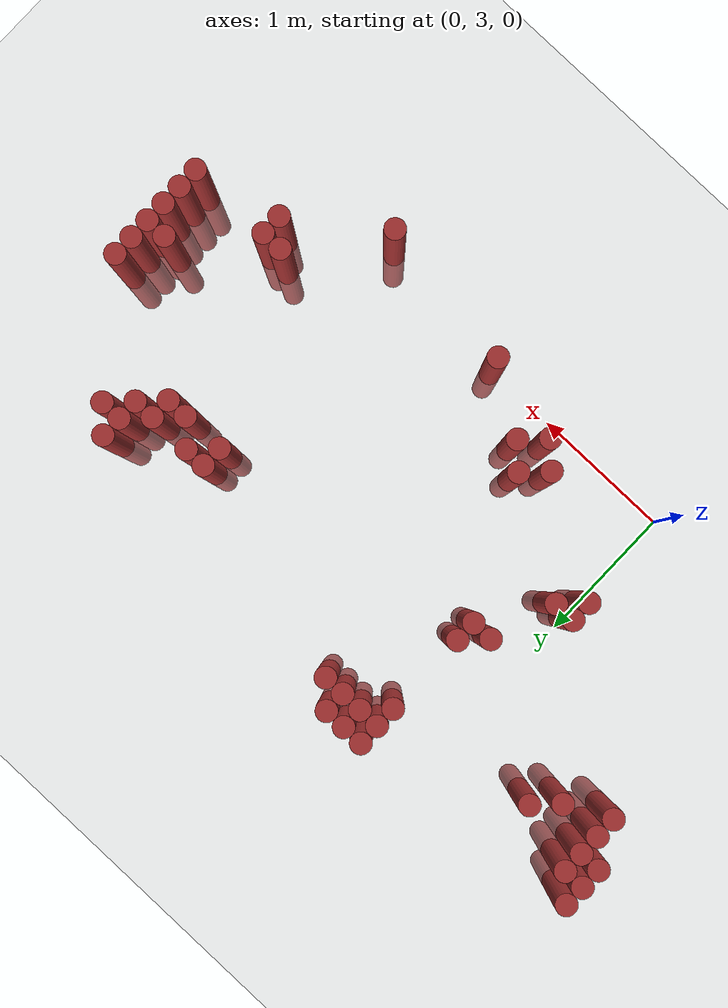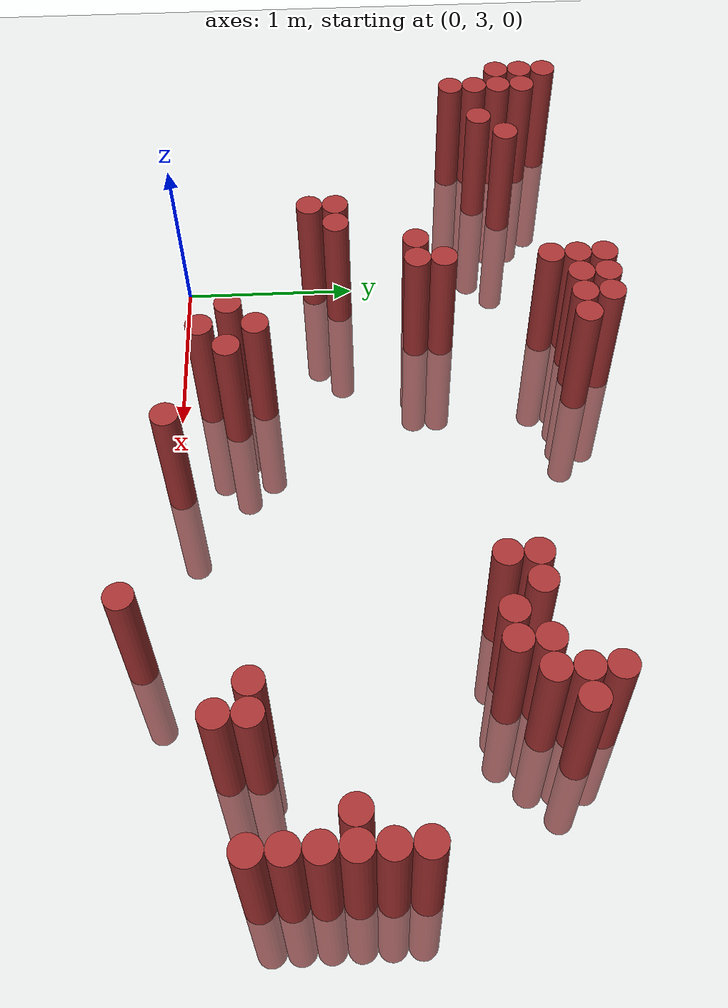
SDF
<sdf version="1.6">
 <world name="default">
  <model name="ground_plane">
   <static>1</static>
   <link name="link">
    <collision name="collision">
     <geometry><plane><normal>0 0 1</normal><size>100 100</size></plane></geometry>
     <surface><friction><ode><mu>100</mu><mu2>50</mu2></ode></friction></surface>
    </collision>
    <visual name="visual">
     <cast_shadows>0</cast_shadows>
     <geometry><plane><normal>0 0 1</normal><size>100 100</size></plane></geometry>
     <material>
      <script><uri>file://media/materials/scripts/gazebo.material</uri><name>Gazebo/Grey</name></script>
     </material>
    </visual>
   </link>
  </model>
  <model name="unit_cylinder_322">
   <static>1</static>
   <pose>-1.175000 4.975000 0.000000 0.000000 0.000000 0.000000</pose>
   <link name="link">
    <inertial>
     <mass>1</mass>
     <inertia><ixx>0.145833</ixx><ixy>0</ixy><ixz>0</ixz><iyy>0.145833</iyy><iyz>0</iyz><izz>0.125</izz></inertia>
    </inertial>
    <collision name="collision">
     <geometry><cylinder><radius>0.075000</radius><length>1.5</length></cylinder></geometry>
    </collision>
    <visual name="visual">
     <geometry><cylinder><radius>0.075000</radius><length>1.5</length></cylinder></geometry>
     <material>
      <ambient>0.648000 0.192000 0.192000 1</ambient>
      <diffuse>0.648000 0.192000 0.192000 1</diffuse>
     </material>
     <material>
      <script><name>Gazebo/Grey</name><uri>file://media/materials/scripts/gazebo.material</uri></script>
     </material>
    </visual>
   </link>
  </model>
  <model name="unit_cylinder_323">
   <static>1</static>
   <pose>-1.175000 5.125000 0.000000 0.000000 0.000000 0.000000</pose>
   <link name="link">
    <inertial>
     <mass>1</mass>
     <inertia><ixx>0.145833</ixx><ixy>0</ixy><ixz>0</ixz><iyy>0.145833</iyy><iyz>0</iyz><izz>0.125</izz></inertia>
    </inertial>
    <collision name="collision">
     <geometry><cylinder><radius>0.075000</radius><length>1.5</length></cylinder></geometry>
    </collision>
    <visual name="visual">
     <geometry><cylinder><radius>0.075000</radius><length>1.5</length></cylinder></geometry>
     <material>
      <ambient>0.648000 0.192000 0.192000 1</ambient>
      <diffuse>0.648000 0.192000 0.192000 1</diffuse>
     </material>
     <material>
      <script><name>Gazebo/Grey</name><uri>file://media/materials/scripts/gazebo.material</uri></script>
     </material>
    </visual>
   </link>
  </model>
  <model name="unit_cylinder_324">
   <static>1</static>
   <pose>-1.175000 5.275000 0.000000 0.000000 0.000000 0.000000</pose>
   <link name="link">
    <inertial>
     <mass>1</mass>
     <inertia><ixx>0.145833</ixx><ixy>0</ixy><ixz>0</ixz><iyy>0.145833</iyy><iyz>0</iyz><izz>0.125</izz></inertia>
    </inertial>
    <collision name="collision">
     <geometry><cylinder><radius>0.075000</radius><length>1.5</length></cylinder></geometry>
    </collision>
    <visual name="visual">
     <geometry><cylinder><radius>0.075000</radius><length>1.5</length></cylinder></geometry>
     <material>
      <ambient>0.648000 0.192000 0.192000 1</ambient>
      <diffuse>0.648000 0.192000 0.192000 1</diffuse>
     </material>
     <material>
      <script><name>Gazebo/Grey</name><uri>file://media/materials/scripts/gazebo.material</uri></script>
     </material>
    </visual>
   </link>
  </model>
  <model name="unit_cylinder_325">
   <static>1</static>
   <pose>-1.025000 4.675000 0.000000 0.000000 0.000000 0.000000</pose>
   <link name="link">
    <inertial>
     <mass>1</mass>
     <inertia><ixx>0.145833</ixx><ixy>0</ixy><ixz>0</ixz><iyy>0.145833</iyy><iyz>0</iyz><izz>0.125</izz></inertia>
    </inertial>
    <collision name="collision">
     <geometry><cylinder><radius>0.075000</radius><length>1.5</length></cylinder></geometry>
    </collision>
    <visual name="visual">
     <geometry><cylinder><radius>0.075000</radius><length>1.5</length></cylinder></geometry>
     <material>
      <ambient>0.648000 0.192000 0.192000 1</ambient>
      <diffuse>0.648000 0.192000 0.192000 1</diffuse>
     </material>
     <material>
      <script><name>Gazebo/Grey</name><uri>file://media/materials/scripts/gazebo.material</uri></script>
     </material>
    </visual>
   </link>
  </model>
  <model name="unit_cylinder_326">
   <static>1</static>
   <pose>-1.025000 4.825000 0.000000 0.000000 0.000000 0.000000</pose>
   <link name="link">
    <inertial>
     <mass>1</mass>
     <inertia><ixx>0.145833</ixx><ixy>0</ixy><ixz>0</ixz><iyy>0.145833</iyy><iyz>0</iyz><izz>0.125</izz></inertia>
    </inertial>
    <collision name="collision">
     <geometry><cylinder><radius>0.075000</radius><length>1.5</length></cylinder></geometry>
    </collision>
    <visual name="visual">
     <geometry><cylinder><radius>0.075000</radius><length>1.5</length></cylinder></geometry>
     <material>
      <ambient>0.648000 0.192000 0.192000 1</ambient>
      <diffuse>0.648000 0.192000 0.192000 1</diffuse>
     </material>
     <material>
      <script><name>Gazebo/Grey</name><uri>file://media/materials/scripts/gazebo.material</uri></script>
     </material>
    </visual>
   </link>
  </model>
  <model name="unit_cylinder_327">
   <static>1</static>
   <pose>-1.025000 4.975000 0.000000 0.000000 0.000000 0.000000</pose>
   <link name="link">
    <inertial>
     <mass>1</mass>
     <inertia><ixx>0.145833</ixx><ixy>0</ixy><ixz>0</ixz><iyy>0.145833</iyy><iyz>0</iyz><izz>0.125</izz></inertia>
    </inertial>
    <collision name="collision">
     <geometry><cylinder><radius>0.075000</radius><length>1.5</length></cylinder></geometry>
    </collision>
    <visual name="visual">
     <geometry><cylinder><radius>0.075000</radius><length>1.5</length></cylinder></geometry>
     <material>
      <ambient>0.648000 0.192000 0.192000 1</ambient>
      <diffuse>0.648000 0.192000 0.192000 1</diffuse>
     </material>
     <material>
      <script><name>Gazebo/Grey</name><uri>file://media/materials/scripts/gazebo.material</uri></script>
     </material>
    </visual>
   </link>
  </model>
  <model name="unit_cylinder_328">
   <static>1</static>
   <pose>-1.025000 5.125000 0.000000 0.000000 0.000000 0.000000</pose>
   <link name="link">
    <inertial>
     <mass>1</mass>
     <inertia><ixx>0.145833</ixx><ixy>0</ixy><ixz>0</ixz><iyy>0.145833</iyy><iyz>0</iyz><izz>0.125</izz></inertia>
    </inertial>
    <collision name="collision">
     <geometry><cylinder><radius>0.075000</radius><length>1.5</length></cylinder></geometry>
    </collision>
    <visual name="visual">
     <geometry><cylinder><radius>0.075000</radius><length>1.5</length></cylinder></geometry>
     <material>
      <ambient>0.648000 0.192000 0.192000 1</ambient>
      <diffuse>0.648000 0.192000 0.192000 1</diffuse>
     </material>
     <material>
      <script><name>Gazebo/Grey</name><uri>file://media/materials/scripts/gazebo.material</uri></script>
     </material>
    </visual>
   </link>
  </model>
  <model name="unit_cylinder_329">
   <static>1</static>
   <pose>-0.725000 4.825000 0.000000 0.000000 0.000000 0.000000</pose>
   <link name="link">
    <inertial>
     <mass>1</mass>
     <inertia><ixx>0.145833</ixx><ixy>0</ixy><ixz>0</ixz><iyy>0.145833</iyy><iyz>0</iyz><izz>0.125</izz></inertia>
    </inertial>
    <collision name="collision">
     <geometry><cylinder><radius>0.075000</radius><length>1.5</length></cylinder></geometry>
    </collision>
    <visual name="visual">
     <geometry><cylinder><radius>0.075000</radius><length>1.5</length></cylinder></geometry>
     <material>
      <ambient>0.648000 0.192000 0.192000 1</ambient>
      <diffuse>0.648000 0.192000 0.192000 1</diffuse>
     </material>
     <material>
      <script><name>Gazebo/Grey</name><uri>file://media/materials/scripts/gazebo.material</uri></script>
     </material>
    </visual>
   </link>
  </model>
  <model name="unit_cylinder_330">
   <static>1</static>
   <pose>-0.575000 4.975000 0.000000 0.000000 0.000000 0.000000</pose>
   <link name="link">
    <inertial>
     <mass>1</mass>
     <inertia><ixx>0.145833</ixx><ixy>0</ixy><ixz>0</ixz><iyy>0.145833</iyy><iyz>0</iyz><izz>0.125</izz></inertia>
    </inertial>
    <collision name="collision">
     <geometry><cylinder><radius>0.075000</radius><length>1.5</length></cylinder></geometry>
    </collision>
    <visual name="visual">
     <geometry><cylinder><radius>0.075000</radius><length>1.5</length></cylinder></geometry>
     <material>
      <ambient>0.648000 0.192000 0.192000 1</ambient>
      <diffuse>0.648000 0.192000 0.192000 1</diffuse>
     </material>
     <material>
      <script><name>Gazebo/Grey</name><uri>file://media/materials/scripts/gazebo.material</uri></script>
     </material>
    </visual>
   </link>
  </model>
  <model name="unit_cylinder_331">
   <static>1</static>
   <pose>0.025000 3.775000 0.000000 0.000000 0.000000 0.000000</pose>
   <link name="link">
    <inertial>
     <mass>1</mass>
     <inertia><ixx>0.145833</ixx><ixy>0</ixy><ixz>0</ixz><iyy>0.145833</iyy><iyz>0</iyz><izz>0.125</izz></inertia>
    </inertial>
    <collision name="collision">
     <geometry><cylinder><radius>0.075000</radius><length>1.5</length></cylinder></geometry>
    </collision>
    <visual name="visual">
     <geometry><cylinder><radius>0.075000</radius><length>1.5</length></cylinder></geometry>
     <material>
      <ambient>0.648000 0.192000 0.192000 1</ambient>
      <diffuse>0.648000 0.192000 0.192000 1</diffuse>
     </material>
     <material>
      <script><name>Gazebo/Grey</name><uri>file://media/materials/scripts/gazebo.material</uri></script>
     </material>
    </visual>
   </link>
  </model>
  <model name="unit_cylinder_332">
   <static>1</static>
   <pose>0.025000 3.925000 0.000000 0.000000 0.000000 0.000000</pose>
   <link name="link">
    <inertial>
     <mass>1</mass>
     <inertia><ixx>0.145833</ixx><ixy>0</ixy><ixz>0</ixz><iyy>0.145833</iyy><iyz>0</iyz><izz>0.125</izz></inertia>
    </inertial>
    <collision name="collision">
     <geometry><cylinder><radius>0.075000</radius><length>1.5</length></cylinder></geometry>
    </collision>
    <visual name="visual">
     <geometry><cylinder><radius>0.075000</radius><length>1.5</length></cylinder></geometry>
     <material>
      <ambient>0.648000 0.192000 0.192000 1</ambient>
      <diffuse>0.648000 0.192000 0.192000 1</diffuse>
     </material>
     <material>
      <script><name>Gazebo/Grey</name><uri>file://media/materials/scripts/gazebo.material</uri></script>
     </material>
    </visual>
   </link>
  </model>
  <model name="unit_cylinder_335">
   <static>1</static>
   <pose>0.175000 3.925000 0.000000 0.000000 0.000000 0.000000</pose>
   <link name="link">
    <inertial>
     <mass>1</mass>
     <inertia><ixx>0.145833</ixx><ixy>0</ixy><ixz>0</ixz><iyy>0.145833</iyy><iyz>0</iyz><izz>0.125</izz></inertia>
    </inertial>
    <collision name="collision">
     <geometry><cylinder><radius>0.075000</radius><length>1.5</length></cylinder></geometry>
    </collision>
    <visual name="visual">
     <geometry><cylinder><radius>0.075000</radius><length>1.5</length></cylinder></geometry>
     <material>
      <ambient>0.648000 0.192000 0.192000 1</ambient>
      <diffuse>0.648000 0.192000 0.192000 1</diffuse>
     </material>
     <material>
      <script><name>Gazebo/Grey</name><uri>file://media/materials/scripts/gazebo.material</uri></script>
     </material>
    </visual>
   </link>
  </model>
  <model name="unit_cylinder_339">
   <static>1</static>
   <pose>0.325000 4.375000 0.000000 0.000000 0.000000 0.000000</pose>
   <link name="link">
    <inertial>
     <mass>1</mass>
     <inertia><ixx>0.145833</ixx><ixy>0</ixy><ixz>0</ixz><iyy>0.145833</iyy><iyz>0</iyz><izz>0.125</izz></inertia>
    </inertial>
    <collision name="collision">
     <geometry><cylinder><radius>0.075000</radius><length>1.5</length></cylinder></geometry>
    </collision>
    <visual name="visual">
     <geometry><cylinder><radius>0.075000</radius><length>1.5</length></cylinder></geometry>
     <material>
      <ambient>0.648000 0.192000 0.192000 1</ambient>
      <diffuse>0.648000 0.192000 0.192000 1</diffuse>
     </material>
     <material>
      <script><name>Gazebo/Grey</name><uri>file://media/materials/scripts/gazebo.material</uri></script>
     </material>
    </visual>
   </link>
  </model>
  <model name="unit_cylinder_343">
   <static>1</static>
   <pose>0.475000 4.375000 0.000000 0.000000 0.000000 0.000000</pose>
   <link name="link">
    <inertial>
     <mass>1</mass>
     <inertia><ixx>0.145833</ixx><ixy>0</ixy><ixz>0</ixz><iyy>0.145833</iyy><iyz>0</iyz><izz>0.125</izz></inertia>
    </inertial>
    <collision name="collision">
     <geometry><cylinder><radius>0.075000</radius><length>1.5</length></cylinder></geometry>
    </collision>
    <visual name="visual">
     <geometry><cylinder><radius>0.075000</radius><length>1.5</length></cylinder></geometry>
     <material>
      <ambient>0.648000 0.192000 0.192000 1</ambient>
      <diffuse>0.648000 0.192000 0.192000 1</diffuse>
     </material>
     <material>
      <script><name>Gazebo/Grey</name><uri>file://media/materials/scripts/gazebo.material</uri></script>
     </material>
    </visual>
   </link>
  </model>
  <model name="unit_cylinder_344">
   <static>1</static>
   <pose>0.475000 4.525000 0.000000 0.000000 0.000000 0.000000</pose>
   <link name="link">
    <inertial>
     <mass>1</mass>
     <inertia><ixx>0.145833</ixx><ixy>0</ixy><ixz>0</ixz><iyy>0.145833</iyy><iyz>0</iyz><izz>0.125</izz></inertia>
    </inertial>
    <collision name="collision">
     <geometry><cylinder><radius>0.075000</radius><length>1.5</length></cylinder></geometry>
    </collision>
    <visual name="visual">
     <geometry><cylinder><radius>0.075000</radius><length>1.5</length></cylinder></geometry>
     <material>
      <ambient>0.648000 0.192000 0.192000 1</ambient>
      <diffuse>0.648000 0.192000 0.192000 1</diffuse>
     </material>
     <material>
      <script><name>Gazebo/Grey</name><uri>file://media/materials/scripts/gazebo.material</uri></script>
     </material>
    </visual>
   </link>
  </model>
  <model name="unit_cylinder_345">
   <static>1</static>
   <pose>0.475000 5.125000 0.000000 0.000000 0.000000 0.000000</pose>
   <link name="link">
    <inertial>
     <mass>1</mass>
     <inertia><ixx>0.145833</ixx><ixy>0</ixy><ixz>0</ixz><iyy>0.145833</iyy><iyz>0</iyz><izz>0.125</izz></inertia>
    </inertial>
    <collision name="collision">
     <geometry><cylinder><radius>0.075000</radius><length>1.5</length></cylinder></geometry>
    </collision>
    <visual name="visual">
     <geometry><cylinder><radius>0.075000</radius><length>1.5</length></cylinder></geometry>
     <material>
      <ambient>0.648000 0.192000 0.192000 1</ambient>
      <diffuse>0.648000 0.192000 0.192000 1</diffuse>
     </material>
     <material>
      <script><name>Gazebo/Grey</name><uri>file://media/materials/scripts/gazebo.material</uri></script>
     </material>
    </visual>
   </link>
  </model>
  <model name="unit_cylinder_346">
   <static>1</static>
   <pose>0.475000 5.275000 0.000000 0.000000 0.000000 0.000000</pose>
   <link name="link">
    <inertial>
     <mass>1</mass>
     <inertia><ixx>0.145833</ixx><ixy>0</ixy><ixz>0</ixz><iyy>0.145833</iyy><iyz>0</iyz><izz>0.125</izz></inertia>
    </inertial>
    <collision name="collision">
     <geometry><cylinder><radius>0.075000</radius><length>1.5</length></cylinder></geometry>
    </collision>
    <visual name="visual">
     <geometry><cylinder><radius>0.075000</radius><length>1.5</length></cylinder></geometry>
     <material>
      <ambient>0.648000 0.192000 0.192000 1</ambient>
      <diffuse>0.648000 0.192000 0.192000 1</diffuse>
     </material>
     <material>
      <script><name>Gazebo/Grey</name><uri>file://media/materials/scripts/gazebo.material</uri></script>
     </material>
    </visual>
   </link>
  </model>
  <model name="unit_cylinder_347">
   <static>1</static>
   <pose>0.475000 5.425000 0.000000 0.000000 0.000000 0.000000</pose>
   <link name="link">
    <inertial>
     <mass>1</mass>
     <inertia><ixx>0.145833</ixx><ixy>0</ixy><ixz>0</ixz><iyy>0.145833</iyy><iyz>0</iyz><izz>0.125</izz></inertia>
    </inertial>
    <collision name="collision">
     <geometry><cylinder><radius>0.075000</radius><length>1.5</length></cylinder></geometry>
    </collision>
    <visual name="visual">
     <geometry><cylinder><radius>0.075000</radius><length>1.5</length></cylinder></geometry>
     <material>
      <ambient>0.648000 0.192000 0.192000 1</ambient>
      <diffuse>0.648000 0.192000 0.192000 1</diffuse>
     </material>
     <material>
      <script><name>Gazebo/Grey</name><uri>file://media/materials/scripts/gazebo.material</uri></script>
     </material>
    </visual>
   </link>
  </model>
  <model name="unit_cylinder_350">
   <static>1</static>
   <pose>0.625000 5.275000 0.000000 0.000000 0.000000 0.000000</pose>
   <link name="link">
    <inertial>
     <mass>1</mass>
     <inertia><ixx>0.145833</ixx><ixy>0</ixy><ixz>0</ixz><iyy>0.145833</iyy><iyz>0</iyz><izz>0.125</izz></inertia>
    </inertial>
    <collision name="collision">
     <geometry><cylinder><radius>0.075000</radius><length>1.5</length></cylinder></geometry>
    </collision>
    <visual name="visual">
     <geometry><cylinder><radius>0.075000</radius><length>1.5</length></cylinder></geometry>
     <material>
      <ambient>0.648000 0.192000 0.192000 1</ambient>
      <diffuse>0.648000 0.192000 0.192000 1</diffuse>
     </material>
     <material>
      <script><name>Gazebo/Grey</name><uri>file://media/materials/scripts/gazebo.material</uri></script>
     </material>
    </visual>
   </link>
  </model>
  <model name="unit_cylinder_351">
   <static>1</static>
   <pose>0.625000 5.425000 0.000000 0.000000 0.000000 0.000000</pose>
   <link name="link">
    <inertial>
     <mass>1</mass>
     <inertia><ixx>0.145833</ixx><ixy>0</ixy><ixz>0</ixz><iyy>0.145833</iyy><iyz>0</iyz><izz>0.125</izz></inertia>
    </inertial>
    <collision name="collision">
     <geometry><cylinder><radius>0.075000</radius><length>1.5</length></cylinder></geometry>
    </collision>
    <visual name="visual">
     <geometry><cylinder><radius>0.075000</radius><length>1.5</length></cylinder></geometry>
     <material>
      <ambient>0.648000 0.192000 0.192000 1</ambient>
      <diffuse>0.648000 0.192000 0.192000 1</diffuse>
     </material>
     <material>
      <script><name>Gazebo/Grey</name><uri>file://media/materials/scripts/gazebo.material</uri></script>
     </material>
    </visual>
   </link>
  </model>
  <model name="unit_cylinder_352">
   <static>1</static>
   <pose>0.775000 3.325000 0.000000 0.000000 0.000000 0.000000</pose>
   <link name="link">
    <inertial>
     <mass>1</mass>
     <inertia><ixx>0.145833</ixx><ixy>0</ixy><ixz>0</ixz><iyy>0.145833</iyy><iyz>0</iyz><izz>0.125</izz></inertia>
    </inertial>
    <collision name="collision">
     <geometry><cylinder><radius>0.075000</radius><length>1.5</length></cylinder></geometry>
    </collision>
    <visual name="visual">
     <geometry><cylinder><radius>0.075000</radius><length>1.5</length></cylinder></geometry>
     <material>
      <ambient>0.648000 0.192000 0.192000 1</ambient>
      <diffuse>0.648000 0.192000 0.192000 1</diffuse>
     </material>
     <material>
      <script><name>Gazebo/Grey</name><uri>file://media/materials/scripts/gazebo.material</uri></script>
     </material>
    </visual>
   </link>
  </model>
  <model name="unit_cylinder_353">
   <static>1</static>
   <pose>0.775000 5.275000 0.000000 0.000000 0.000000 0.000000</pose>
   <link name="link">
    <inertial>
     <mass>1</mass>
     <inertia><ixx>0.145833</ixx><ixy>0</ixy><ixz>0</ixz><iyy>0.145833</iyy><iyz>0</iyz><izz>0.125</izz></inertia>
    </inertial>
    <collision name="collision">
     <geometry><cylinder><radius>0.075000</radius><length>1.5</length></cylinder></geometry>
    </collision>
    <visual name="visual">
     <geometry><cylinder><radius>0.075000</radius><length>1.5</length></cylinder></geometry>
     <material>
      <ambient>0.648000 0.192000 0.192000 1</ambient>
      <diffuse>0.648000 0.192000 0.192000 1</diffuse>
     </material>
     <material>
      <script><name>Gazebo/Grey</name><uri>file://media/materials/scripts/gazebo.material</uri></script>
     </material>
    </visual>
   </link>
  </model>
  <model name="unit_cylinder_354">
   <static>1</static>
   <pose>0.775000 5.425000 0.000000 0.000000 0.000000 0.000000</pose>
   <link name="link">
    <inertial>
     <mass>1</mass>
     <inertia><ixx>0.145833</ixx><ixy>0</ixy><ixz>0</ixz><iyy>0.145833</iyy><iyz>0</iyz><izz>0.125</izz></inertia>
    </inertial>
    <collision name="collision">
     <geometry><cylinder><radius>0.075000</radius><length>1.5</length></cylinder></geometry>
    </collision>
    <visual name="visual">
     <geometry><cylinder><radius>0.075000</radius><length>1.5</length></cylinder></geometry>
     <material>
      <ambient>0.648000 0.192000 0.192000 1</ambient>
      <diffuse>0.648000 0.192000 0.192000 1</diffuse>
     </material>
     <material>
      <script><name>Gazebo/Grey</name><uri>file://media/materials/scripts/gazebo.material</uri></script>
     </material>
    </visual>
   </link>
  </model>
  <model name="unit_cylinder_359">
   <static>1</static>
   <pose>0.925000 3.175000 0.000000 0.000000 0.000000 0.000000</pose>
   <link name="link">
    <inertial>
     <mass>1</mass>
     <inertia><ixx>0.145833</ixx><ixy>0</ixy><ixz>0</ixz><iyy>0.145833</iyy><iyz>0</iyz><izz>0.125</izz></inertia>
    </inertial>
    <collision name="collision">
     <geometry><cylinder><radius>0.075000</radius><length>1.5</length></cylinder></geometry>
    </collision>
    <visual name="visual">
     <geometry><cylinder><radius>0.075000</radius><length>1.5</length></cylinder></geometry>
     <material>
      <ambient>0.648000 0.192000 0.192000 1</ambient>
      <diffuse>0.648000 0.192000 0.192000 1</diffuse>
     </material>
     <material>
      <script><name>Gazebo/Grey</name><uri>file://media/materials/scripts/gazebo.material</uri></script>
     </material>
    </visual>
   </link>
  </model>
  <model name="unit_cylinder_360">
   <static>1</static>
   <pose>0.925000 3.475000 0.000000 0.000000 0.000000 0.000000</pose>
   <link name="link">
    <inertial>
     <mass>1</mass>
     <inertia><ixx>0.145833</ixx><ixy>0</ixy><ixz>0</ixz><iyy>0.145833</iyy><iyz>0</iyz><izz>0.125</izz></inertia>
    </inertial>
    <collision name="collision">
     <geometry><cylinder><radius>0.075000</radius><length>1.5</length></cylinder></geometry>
    </collision>
    <visual name="visual">
     <geometry><cylinder><radius>0.075000</radius><length>1.5</length></cylinder></geometry>
     <material>
      <ambient>0.648000 0.192000 0.192000 1</ambient>
      <diffuse>0.648000 0.192000 0.192000 1</diffuse>
     </material>
     <material>
      <script><name>Gazebo/Grey</name><uri>file://media/materials/scripts/gazebo.material</uri></script>
     </material>
    </visual>
   </link>
  </model>
  <model name="unit_cylinder_361">
   <static>1</static>
   <pose>0.925000 5.275000 0.000000 0.000000 0.000000 0.000000</pose>
   <link name="link">
    <inertial>
     <mass>1</mass>
     <inertia><ixx>0.145833</ixx><ixy>0</ixy><ixz>0</ixz><iyy>0.145833</iyy><iyz>0</iyz><izz>0.125</izz></inertia>
    </inertial>
    <collision name="collision">
     <geometry><cylinder><radius>0.075000</radius><length>1.5</length></cylinder></geometry>
    </collision>
    <visual name="visual">
     <geometry><cylinder><radius>0.075000</radius><length>1.5</length></cylinder></geometry>
     <material>
      <ambient>0.648000 0.192000 0.192000 1</ambient>
      <diffuse>0.648000 0.192000 0.192000 1</diffuse>
     </material>
     <material>
      <script><name>Gazebo/Grey</name><uri>file://media/materials/scripts/gazebo.material</uri></script>
     </material>
    </visual>
   </link>
  </model>
  <model name="unit_cylinder_365">
   <static>1</static>
   <pose>1.075000 3.325000 0.000000 0.000000 0.000000 0.000000</pose>
   <link name="link">
    <inertial>
     <mass>1</mass>
     <inertia><ixx>0.145833</ixx><ixy>0</ixy><ixz>0</ixz><iyy>0.145833</iyy><iyz>0</iyz><izz>0.125</izz></inertia>
    </inertial>
    <collision name="collision">
     <geometry><cylinder><radius>0.075000</radius><length>1.5</length></cylinder></geometry>
    </collision>
    <visual name="visual">
     <geometry><cylinder><radius>0.075000</radius><length>1.5</length></cylinder></geometry>
     <material>
      <ambient>0.648000 0.192000 0.192000 1</ambient>
      <diffuse>0.648000 0.192000 0.192000 1</diffuse>
     </material>
     <material>
      <script><name>Gazebo/Grey</name><uri>file://media/materials/scripts/gazebo.material</uri></script>
     </material>
    </visual>
   </link>
  </model>
  <model name="unit_cylinder_378">
   <static>1</static>
   <pose>1.525000 3.025000 0.000000 0.000000 0.000000 0.000000</pose>
   <link name="link">
    <inertial>
     <mass>1</mass>
     <inertia><ixx>0.145833</ixx><ixy>0</ixy><ixz>0</ixz><iyy>0.145833</iyy><iyz>0</iyz><izz>0.125</izz></inertia>
    </inertial>
    <collision name="collision">
     <geometry><cylinder><radius>0.075000</radius><length>1.5</length></cylinder></geometry>
    </collision>
    <visual name="visual">
     <geometry><cylinder><radius>0.075000</radius><length>1.5</length></cylinder></geometry>
     <material>
      <ambient>0.648000 0.192000 0.192000 1</ambient>
      <diffuse>0.648000 0.192000 0.192000 1</diffuse>
     </material>
     <material>
      <script><name>Gazebo/Grey</name><uri>file://media/materials/scripts/gazebo.material</uri></script>
     </material>
    </visual>
   </link>
  </model>
  <model name="unit_cylinder_395">
   <static>1</static>
   <pose>2.425000 4.675000 0.000000 0.000000 0.000000 0.000000</pose>
   <link name="link">
    <inertial>
     <mass>1</mass>
     <inertia><ixx>0.145833</ixx><ixy>0</ixy><ixz>0</ixz><iyy>0.145833</iyy><iyz>0</iyz><izz>0.125</izz></inertia>
    </inertial>
    <collision name="collision">
     <geometry><cylinder><radius>0.075000</radius><length>1.5</length></cylinder></geometry>
    </collision>
    <visual name="visual">
     <geometry><cylinder><radius>0.075000</radius><length>1.5</length></cylinder></geometry>
     <material>
      <ambient>0.648000 0.192000 0.192000 1</ambient>
      <diffuse>0.648000 0.192000 0.192000 1</diffuse>
     </material>
     <material>
      <script><name>Gazebo/Grey</name><uri>file://media/materials/scripts/gazebo.material</uri></script>
     </material>
    </visual>
   </link>
  </model>
  <model name="unit_cylinder_396">
   <static>1</static>
   <pose>2.425000 4.825000 0.000000 0.000000 0.000000 0.000000</pose>
   <link name="link">
    <inertial>
     <mass>1</mass>
     <inertia><ixx>0.145833</ixx><ixy>0</ixy><ixz>0</ixz><iyy>0.145833</iyy><iyz>0</iyz><izz>0.125</izz></inertia>
    </inertial>
    <collision name="collision">
     <geometry><cylinder><radius>0.075000</radius><length>1.5</length></cylinder></geometry>
    </collision>
    <visual name="visual">
     <geometry><cylinder><radius>0.075000</radius><length>1.5</length></cylinder></geometry>
     <material>
      <ambient>0.648000 0.192000 0.192000 1</ambient>
      <diffuse>0.648000 0.192000 0.192000 1</diffuse>
     </material>
     <material>
      <script><name>Gazebo/Grey</name><uri>file://media/materials/scripts/gazebo.material</uri></script>
     </material>
    </visual>
   </link>
  </model>
  <model name="unit_cylinder_399">
   <static>1</static>
   <pose>2.575000 2.875000 0.000000 0.000000 0.000000 0.000000</pose>
   <link name="link">
    <inertial>
     <mass>1</mass>
     <inertia><ixx>0.145833</ixx><ixy>0</ixy><ixz>0</ixz><iyy>0.145833</iyy><iyz>0</iyz><izz>0.125</izz></inertia>
    </inertial>
    <collision name="collision">
     <geometry><cylinder><radius>0.075000</radius><length>1.5</length></cylinder></geometry>
    </collision>
    <visual name="visual">
     <geometry><cylinder><radius>0.075000</radius><length>1.5</length></cylinder></geometry>
     <material>
      <ambient>0.648000 0.192000 0.192000 1</ambient>
      <diffuse>0.648000 0.192000 0.192000 1</diffuse>
     </material>
     <material>
      <script><name>Gazebo/Grey</name><uri>file://media/materials/scripts/gazebo.material</uri></script>
     </material>
    </visual>
   </link>
  </model>
  <model name="unit_cylinder_400">
   <static>1</static>
   <pose>2.575000 4.825000 0.000000 0.000000 0.000000 0.000000</pose>
   <link name="link">
    <inertial>
     <mass>1</mass>
     <inertia><ixx>0.145833</ixx><ixy>0</ixy><ixz>0</ixz><iyy>0.145833</iyy><iyz>0</iyz><izz>0.125</izz></inertia>
    </inertial>
    <collision name="collision">
     <geometry><cylinder><radius>0.075000</radius><length>1.5</length></cylinder></geometry>
    </collision>
    <visual name="visual">
     <geometry><cylinder><radius>0.075000</radius><length>1.5</length></cylinder></geometry>
     <material>
      <ambient>0.648000 0.192000 0.192000 1</ambient>
      <diffuse>0.648000 0.192000 0.192000 1</diffuse>
     </material>
     <material>
      <script><name>Gazebo/Grey</name><uri>file://media/materials/scripts/gazebo.material</uri></script>
     </material>
    </visual>
   </link>
  </model>
  <model name="unit_cylinder_401">
   <static>1</static>
   <pose>2.725000 4.675000 0.000000 0.000000 0.000000 0.000000</pose>
   <link name="link">
    <inertial>
     <mass>1</mass>
     <inertia><ixx>0.145833</ixx><ixy>0</ixy><ixz>0</ixz><iyy>0.145833</iyy><iyz>0</iyz><izz>0.125</izz></inertia>
    </inertial>
    <collision name="collision">
     <geometry><cylinder><radius>0.075000</radius><length>1.5</length></cylinder></geometry>
    </collision>
    <visual name="visual">
     <geometry><cylinder><radius>0.075000</radius><length>1.5</length></cylinder></geometry>
     <material>
      <ambient>0.648000 0.192000 0.192000 1</ambient>
      <diffuse>0.648000 0.192000 0.192000 1</diffuse>
     </material>
     <material>
      <script><name>Gazebo/Grey</name><uri>file://media/materials/scripts/gazebo.material</uri></script>
     </material>
    </visual>
   </link>
  </model>
  <model name="unit_cylinder_402">
   <static>1</static>
   <pose>2.875000 4.675000 0.000000 0.000000 0.000000 0.000000</pose>
   <link name="link">
    <inertial>
     <mass>1</mass>
     <inertia><ixx>0.145833</ixx><ixy>0</ixy><ixz>0</ixz><iyy>0.145833</iyy><iyz>0</iyz><izz>0.125</izz></inertia>
    </inertial>
    <collision name="collision">
     <geometry><cylinder><radius>0.075000</radius><length>1.5</length></cylinder></geometry>
    </collision>
    <visual name="visual">
     <geometry><cylinder><radius>0.075000</radius><length>1.5</length></cylinder></geometry>
     <material>
      <ambient>0.648000 0.192000 0.192000 1</ambient>
      <diffuse>0.648000 0.192000 0.192000 1</diffuse>
     </material>
     <material>
      <script><name>Gazebo/Grey</name><uri>file://media/materials/scripts/gazebo.material</uri></script>
     </material>
    </visual>
   </link>
  </model>
  <model name="unit_cylinder_403">
   <static>1</static>
   <pose>2.875000 4.825000 0.000000 0.000000 0.000000 0.000000</pose>
   <link name="link">
    <inertial>
     <mass>1</mass>
     <inertia><ixx>0.145833</ixx><ixy>0</ixy><ixz>0</ixz><iyy>0.145833</iyy><iyz>0</iyz><izz>0.125</izz></inertia>
    </inertial>
    <collision name="collision">
     <geometry><cylinder><radius>0.075000</radius><length>1.5</length></cylinder></geometry>
    </collision>
    <visual name="visual">
     <geometry><cylinder><radius>0.075000</radius><length>1.5</length></cylinder></geometry>
     <material>
      <ambient>0.648000 0.192000 0.192000 1</ambient>
      <diffuse>0.648000 0.192000 0.192000 1</diffuse>
     </material>
     <material>
      <script><name>Gazebo/Grey</name><uri>file://media/materials/scripts/gazebo.material</uri></script>
     </material>
    </visual>
   </link>
  </model>
  <model name="unit_cylinder_404">
   <static>1</static>
   <pose>3.025000 3.475000 0.000000 0.000000 0.000000 0.000000</pose>
   <link name="link">
    <inertial>
     <mass>1</mass>
     <inertia><ixx>0.145833</ixx><ixy>0</ixy><ixz>0</ixz><iyy>0.145833</iyy><iyz>0</iyz><izz>0.125</izz></inertia>
    </inertial>
    <collision name="collision">
     <geometry><cylinder><radius>0.075000</radius><length>1.5</length></cylinder></geometry>
    </collision>
    <visual name="visual">
     <geometry><cylinder><radius>0.075000</radius><length>1.5</length></cylinder></geometry>
     <material>
      <ambient>0.648000 0.192000 0.192000 1</ambient>
      <diffuse>0.648000 0.192000 0.192000 1</diffuse>
     </material>
     <material>
      <script><name>Gazebo/Grey</name><uri>file://media/materials/scripts/gazebo.material</uri></script>
     </material>
    </visual>
   </link>
  </model>
  <model name="unit_cylinder_405">
   <static>1</static>
   <pose>3.025000 4.825000 0.000000 0.000000 0.000000 0.000000</pose>
   <link name="link">
    <inertial>
     <mass>1</mass>
     <inertia><ixx>0.145833</ixx><ixy>0</ixy><ixz>0</ixz><iyy>0.145833</iyy><iyz>0</iyz><izz>0.125</izz></inertia>
    </inertial>
    <collision name="collision">
     <geometry><cylinder><radius>0.075000</radius><length>1.5</length></cylinder></geometry>
    </collision>
    <visual name="visual">
     <geometry><cylinder><radius>0.075000</radius><length>1.5</length></cylinder></geometry>
     <material>
      <ambient>0.648000 0.192000 0.192000 1</ambient>
      <diffuse>0.648000 0.192000 0.192000 1</diffuse>
     </material>
     <material>
      <script><name>Gazebo/Grey</name><uri>file://media/materials/scripts/gazebo.material</uri></script>
     </material>
    </visual>
   </link>
  </model>
  <model name="unit_cylinder_406">
   <static>1</static>
   <pose>3.025000 4.975000 0.000000 0.000000 0.000000 0.000000</pose>
   <link name="link">
    <inertial>
     <mass>1</mass>
     <inertia><ixx>0.145833</ixx><ixy>0</ixy><ixz>0</ixz><iyy>0.145833</iyy><iyz>0</iyz><izz>0.125</izz></inertia>
    </inertial>
    <collision name="collision">
     <geometry><cylinder><radius>0.075000</radius><length>1.5</length></cylinder></geometry>
    </collision>
    <visual name="visual">
     <geometry><cylinder><radius>0.075000</radius><length>1.5</length></cylinder></geometry>
     <material>
      <ambient>0.648000 0.192000 0.192000 1</ambient>
      <diffuse>0.648000 0.192000 0.192000 1</diffuse>
     </material>
     <material>
      <script><name>Gazebo/Grey</name><uri>file://media/materials/scripts/gazebo.material</uri></script>
     </material>
    </visual>
   </link>
  </model>
  <model name="unit_cylinder_407">
   <static>1</static>
   <pose>3.025000 5.125000 0.000000 0.000000 0.000000 0.000000</pose>
   <link name="link">
    <inertial>
     <mass>1</mass>
     <inertia><ixx>0.145833</ixx><ixy>0</ixy><ixz>0</ixz><iyy>0.145833</iyy><iyz>0</iyz><izz>0.125</izz></inertia>
    </inertial>
    <collision name="collision">
     <geometry><cylinder><radius>0.075000</radius><length>1.5</length></cylinder></geometry>
    </collision>
    <visual name="visual">
     <geometry><cylinder><radius>0.075000</radius><length>1.5</length></cylinder></geometry>
     <material>
      <ambient>0.648000 0.192000 0.192000 1</ambient>
      <diffuse>0.648000 0.192000 0.192000 1</diffuse>
     </material>
     <material>
      <script><name>Gazebo/Grey</name><uri>file://media/materials/scripts/gazebo.material</uri></script>
     </material>
    </visual>
   </link>
  </model>
  <model name="unit_cylinder_408">
   <static>1</static>
   <pose>3.175000 3.325000 0.000000 0.000000 0.000000 0.000000</pose>
   <link name="link">
    <inertial>
     <mass>1</mass>
     <inertia><ixx>0.145833</ixx><ixy>0</ixy><ixz>0</ixz><iyy>0.145833</iyy><iyz>0</iyz><izz>0.125</izz></inertia>
    </inertial>
    <collision name="collision">
     <geometry><cylinder><radius>0.075000</radius><length>1.5</length></cylinder></geometry>
    </collision>
    <visual name="visual">
     <geometry><cylinder><radius>0.075000</radius><length>1.5</length></cylinder></geometry>
     <material>
      <ambient>0.648000 0.192000 0.192000 1</ambient>
      <diffuse>0.648000 0.192000 0.192000 1</diffuse>
     </material>
     <material>
      <script><name>Gazebo/Grey</name><uri>file://media/materials/scripts/gazebo.material</uri></script>
     </material>
    </visual>
   </link>
  </model>
  <model name="unit_cylinder_409">
   <static>1</static>
   <pose>3.175000 3.475000 0.000000 0.000000 0.000000 0.000000</pose>
   <link name="link">
    <inertial>
     <mass>1</mass>
     <inertia><ixx>0.145833</ixx><ixy>0</ixy><ixz>0</ixz><iyy>0.145833</iyy><iyz>0</iyz><izz>0.125</izz></inertia>
    </inertial>
    <collision name="collision">
     <geometry><cylinder><radius>0.075000</radius><length>1.5</length></cylinder></geometry>
    </collision>
    <visual name="visual">
     <geometry><cylinder><radius>0.075000</radius><length>1.5</length></cylinder></geometry>
     <material>
      <ambient>0.648000 0.192000 0.192000 1</ambient>
      <diffuse>0.648000 0.192000 0.192000 1</diffuse>
     </material>
     <material>
      <script><name>Gazebo/Grey</name><uri>file://media/materials/scripts/gazebo.material</uri></script>
     </material>
    </visual>
   </link>
  </model>
  <model name="unit_cylinder_410">
   <static>1</static>
   <pose>3.175000 4.975000 0.000000 0.000000 0.000000 0.000000</pose>
   <link name="link">
    <inertial>
     <mass>1</mass>
     <inertia><ixx>0.145833</ixx><ixy>0</ixy><ixz>0</ixz><iyy>0.145833</iyy><iyz>0</iyz><izz>0.125</izz></inertia>
    </inertial>
    <collision name="collision">
     <geometry><cylinder><radius>0.075000</radius><length>1.5</length></cylinder></geometry>
    </collision>
    <visual name="visual">
     <geometry><cylinder><radius>0.075000</radius><length>1.5</length></cylinder></geometry>
     <material>
      <ambient>0.648000 0.192000 0.192000 1</ambient>
      <diffuse>0.648000 0.192000 0.192000 1</diffuse>
     </material>
     <material>
      <script><name>Gazebo/Grey</name><uri>file://media/materials/scripts/gazebo.material</uri></script>
     </material>
    </visual>
   </link>
  </model>
  <model name="unit_cylinder_414">
   <static>1</static>
   <pose>3.625000 3.925000 0.000000 0.000000 0.000000 0.000000</pose>
   <link name="link">
    <inertial>
     <mass>1</mass>
     <inertia><ixx>0.145833</ixx><ixy>0</ixy><ixz>0</ixz><iyy>0.145833</iyy><iyz>0</iyz><izz>0.125</izz></inertia>
    </inertial>
    <collision name="collision">
     <geometry><cylinder><radius>0.075000</radius><length>1.5</length></cylinder></geometry>
    </collision>
    <visual name="visual">
     <geometry><cylinder><radius>0.075000</radius><length>1.5</length></cylinder></geometry>
     <material>
      <ambient>0.648000 0.192000 0.192000 1</ambient>
      <diffuse>0.648000 0.192000 0.192000 1</diffuse>
     </material>
     <material>
      <script><name>Gazebo/Grey</name><uri>file://media/materials/scripts/gazebo.material</uri></script>
     </material>
    </visual>
   </link>
  </model>
  <model name="unit_cylinder_432">
   <static>1</static>
   <pose>3.775000 3.475000 0.000000 0.000000 0.000000 0.000000</pose>
   <link name="link">
    <inertial>
     <mass>1</mass>
     <inertia><ixx>0.145833</ixx><ixy>0</ixy><ixz>0</ixz><iyy>0.145833</iyy><iyz>0</iyz><izz>0.125</izz></inertia>
    </inertial>
    <collision name="collision">
     <geometry><cylinder><radius>0.075000</radius><length>1.5</length></cylinder></geometry>
    </collision>
    <visual name="visual">
     <geometry><cylinder><radius>0.075000</radius><length>1.5</length></cylinder></geometry>
     <material>
      <ambient>0.648000 0.192000 0.192000 1</ambient>
      <diffuse>0.648000 0.192000 0.192000 1</diffuse>
     </material>
     <material>
      <script><name>Gazebo/Grey</name><uri>file://media/materials/scripts/gazebo.material</uri></script>
     </material>
    </visual>
   </link>
  </model>
  <model name="unit_cylinder_433">
   <static>1</static>
   <pose>3.775000 3.625000 0.000000 0.000000 0.000000 0.000000</pose>
   <link name="link">
    <inertial>
     <mass>1</mass>
     <inertia><ixx>0.145833</ixx><ixy>0</ixy><ixz>0</ixz><iyy>0.145833</iyy><iyz>0</iyz><izz>0.125</izz></inertia>
    </inertial>
    <collision name="collision">
     <geometry><cylinder><radius>0.075000</radius><length>1.5</length></cylinder></geometry>
    </collision>
    <visual name="visual">
     <geometry><cylinder><radius>0.075000</radius><length>1.5</length></cylinder></geometry>
     <material>
      <ambient>0.648000 0.192000 0.192000 1</ambient>
      <diffuse>0.648000 0.192000 0.192000 1</diffuse>
     </material>
     <material>
      <script><name>Gazebo/Grey</name><uri>file://media/materials/scripts/gazebo.material</uri></script>
     </material>
    </visual>
   </link>
  </model>
  <model name="unit_cylinder_434">
   <static>1</static>
   <pose>3.775000 3.775000 0.000000 0.000000 0.000000 0.000000</pose>
   <link name="link">
    <inertial>
     <mass>1</mass>
     <inertia><ixx>0.145833</ixx><ixy>0</ixy><ixz>0</ixz><iyy>0.145833</iyy><iyz>0</iyz><izz>0.125</izz></inertia>
    </inertial>
    <collision name="collision">
     <geometry><cylinder><radius>0.075000</radius><length>1.5</length></cylinder></geometry>
    </collision>
    <visual name="visual">
     <geometry><cylinder><radius>0.075000</radius><length>1.5</length></cylinder></geometry>
     <material>
      <ambient>0.648000 0.192000 0.192000 1</ambient>
      <diffuse>0.648000 0.192000 0.192000 1</diffuse>
     </material>
     <material>
      <script><name>Gazebo/Grey</name><uri>file://media/materials/scripts/gazebo.material</uri></script>
     </material>
    </visual>
   </link>
  </model>
  <model name="unit_cylinder_435">
   <static>1</static>
   <pose>3.775000 3.925000 0.000000 0.000000 0.000000 0.000000</pose>
   <link name="link">
    <inertial>
     <mass>1</mass>
     <inertia><ixx>0.145833</ixx><ixy>0</ixy><ixz>0</ixz><iyy>0.145833</iyy><iyz>0</iyz><izz>0.125</izz></inertia>
    </inertial>
    <collision name="collision">
     <geometry><cylinder><radius>0.075000</radius><length>1.5</length></cylinder></geometry>
    </collision>
    <visual name="visual">
     <geometry><cylinder><radius>0.075000</radius><length>1.5</length></cylinder></geometry>
     <material>
      <ambient>0.648000 0.192000 0.192000 1</ambient>
      <diffuse>0.648000 0.192000 0.192000 1</diffuse>
     </material>
     <material>
      <script><name>Gazebo/Grey</name><uri>file://media/materials/scripts/gazebo.material</uri></script>
     </material>
    </visual>
   </link>
  </model>
  <model name="unit_cylinder_436">
   <static>1</static>
   <pose>3.775000 4.075000 0.000000 0.000000 0.000000 0.000000</pose>
   <link name="link">
    <inertial>
     <mass>1</mass>
     <inertia><ixx>0.145833</ixx><ixy>0</ixy><ixz>0</ixz><iyy>0.145833</iyy><iyz>0</iyz><izz>0.125</izz></inertia>
    </inertial>
    <collision name="collision">
     <geometry><cylinder><radius>0.075000</radius><length>1.5</length></cylinder></geometry>
    </collision>
    <visual name="visual">
     <geometry><cylinder><radius>0.075000</radius><length>1.5</length></cylinder></geometry>
     <material>
      <ambient>0.648000 0.192000 0.192000 1</ambient>
      <diffuse>0.648000 0.192000 0.192000 1</diffuse>
     </material>
     <material>
      <script><name>Gazebo/Grey</name><uri>file://media/materials/scripts/gazebo.material</uri></script>
     </material>
    </visual>
   </link>
  </model>
  <model name="unit_cylinder_437">
   <static>1</static>
   <pose>3.775000 4.225000 0.000000 0.000000 0.000000 0.000000</pose>
   <link name="link">
    <inertial>
     <mass>1</mass>
     <inertia><ixx>0.145833</ixx><ixy>0</ixy><ixz>0</ixz><iyy>0.145833</iyy><iyz>0</iyz><izz>0.125</izz></inertia>
    </inertial>
    <collision name="collision">
     <geometry><cylinder><radius>0.075000</radius><length>1.5</length></cylinder></geometry>
    </collision>
    <visual name="visual">
     <geometry><cylinder><radius>0.075000</radius><length>1.5</length></cylinder></geometry>
     <material>
      <ambient>0.648000 0.192000 0.192000 1</ambient>
      <diffuse>0.648000 0.192000 0.192000 1</diffuse>
     </material>
     <material>
      <script><name>Gazebo/Grey</name><uri>file://media/materials/scripts/gazebo.material</uri></script>
     </material>
    </visual>
   </link>
  </model>
 </world>
</sdf>
